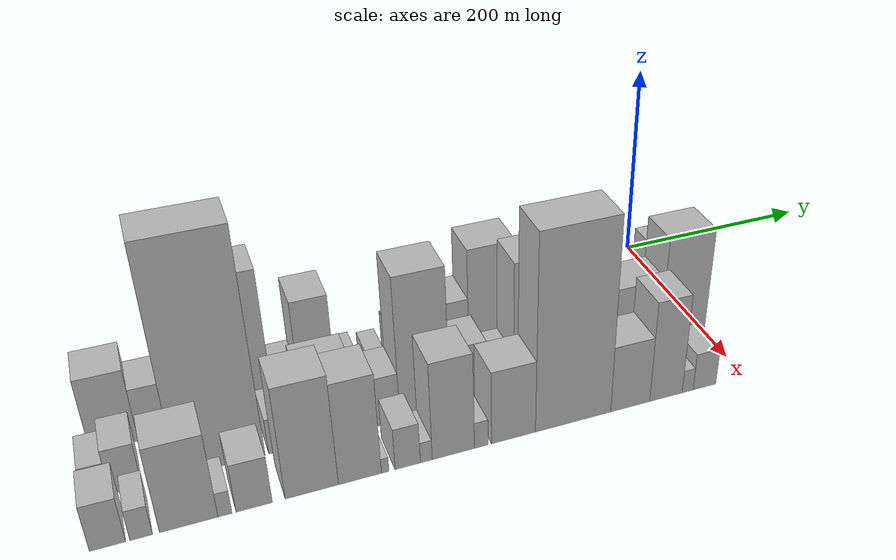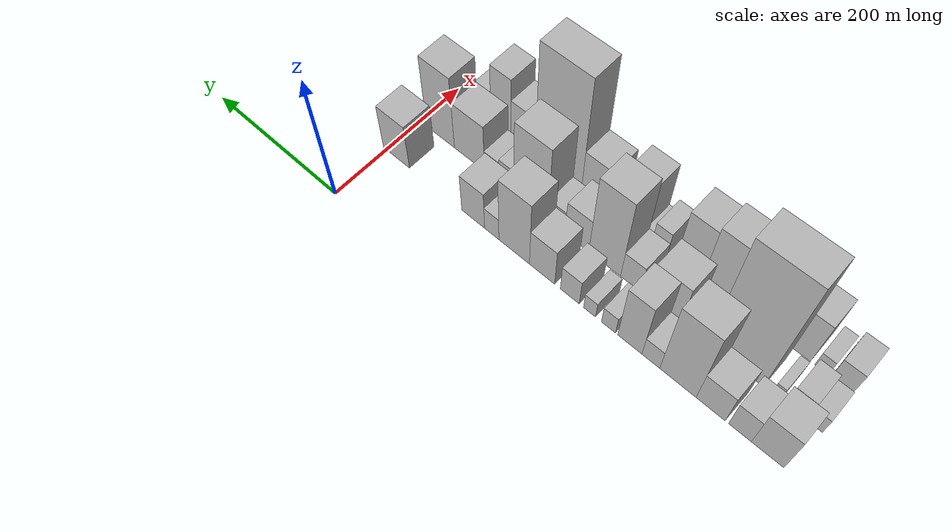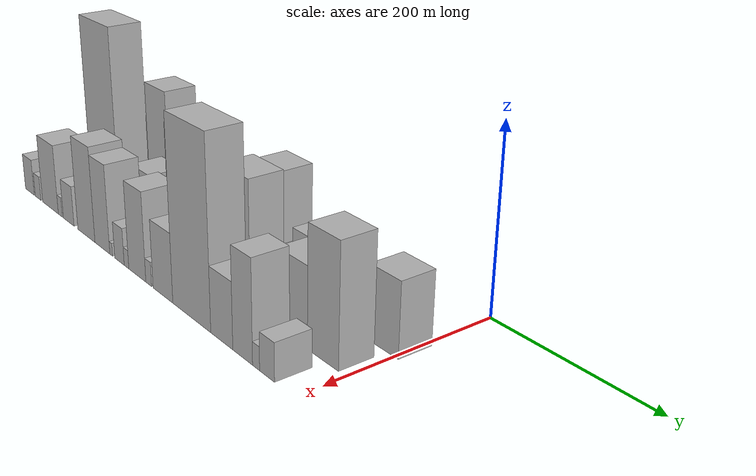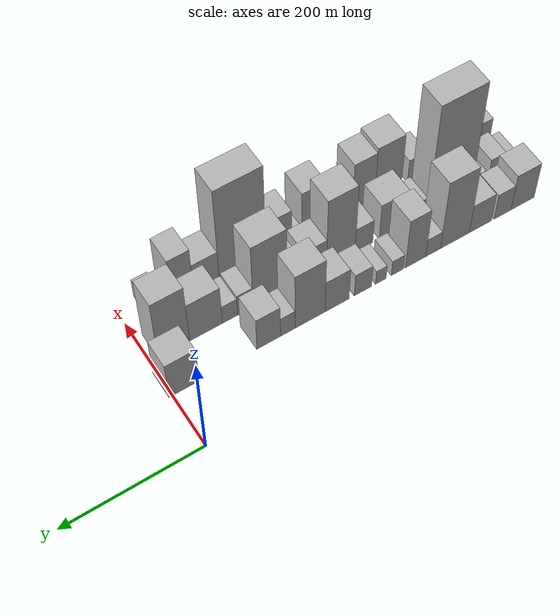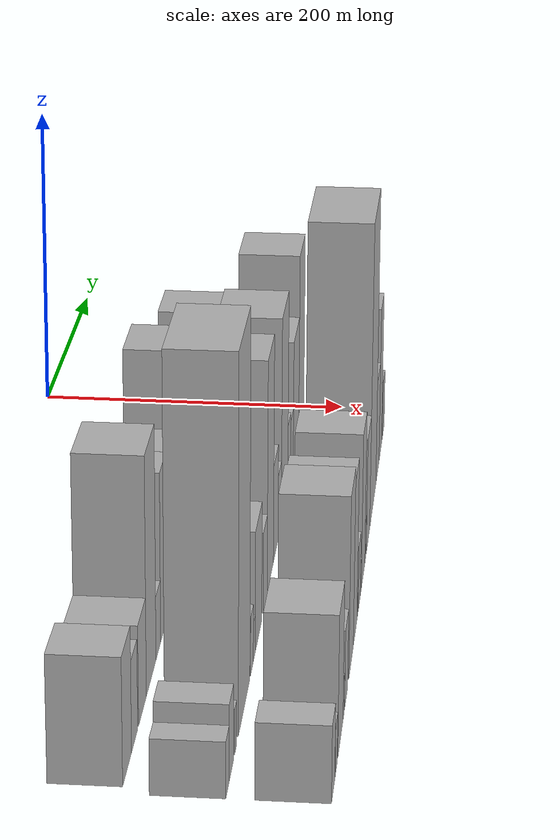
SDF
<sdf version="1.6">
 <world name="default">
  <model name="building_1">
   <static>1</static>
   <pose>100.0000 -532.8560 0 0.000000 0.000000 0.000000</pose>
   <link name="link">
    <pose>0 0 37.50 0 0 0</pose>
    <collision name="collision"><geometry><box><size>40.0000 38.2881 75.0000</size></box></geometry></collision>
    <visual name="visual">
     <cast_shadows>0</cast_shadows>
     <geometry><box><size>40.0000 38.2881 75.0000</size></box></geometry>
     <material>
      <script>
       <uri>model://HANNAS_wall/materials/scripts</uri>
       <uri>model://HANNAS_wall/materials/textures</uri>
       <name>vrc/HANNAS_wall</name>
      </script>
     </material>
    </visual>
   </link>
  </model>
  <model name="building_2">
   <static>1</static>
   <pose>100.0000 -499.9469 0 0.000000 0.000000 0.000000</pose>
   <link name="link">
    <pose>0 0 27.00 0 0 0</pose>
    <collision name="collision"><geometry><box><size>40.0000 27.5301 54.0000</size></box></geometry></collision>
    <visual name="visual">
     <cast_shadows>0</cast_shadows>
     <geometry><box><size>40.0000 27.5301 54.0000</size></box></geometry>
     <material>
      <script>
       <uri>model://HANNAS_wall/materials/scripts</uri>
       <uri>model://HANNAS_wall/materials/textures</uri>
       <name>vrc/HANNAS_wall</name>
      </script>
     </material>
    </visual>
   </link>
  </model>
  <model name="building_3">
   <static>1</static>
   <pose>100.0000 -464.2220 0 0.000000 0.000000 0.000000</pose>
   <link name="link">
    <pose>0 0 30.00 0 0 0</pose>
    <collision name="collision"><geometry><box><size>40.0000 35.9197 60.0000</size></box></geometry></collision>
    <visual name="visual">
     <cast_shadows>0</cast_shadows>
     <geometry><box><size>40.0000 35.9197 60.0000</size></box></geometry>
     <material>
      <script>
       <uri>model://HANNAS_wall/materials/scripts</uri>
       <uri>model://HANNAS_wall/materials/textures</uri>
       <name>vrc/HANNAS_wall</name>
      </script>
     </material>
    </visual>
   </link>
  </model>
  <model name="building_4">
   <static>1</static>
   <pose>100.0000 -423.1374 0 0.000000 0.000000 0.000000</pose>
   <link name="link">
    <pose>0 0 72.00 0 0 0</pose>
    <collision name="collision"><geometry><box><size>40.0000 46.2496 144.0000</size></box></geometry></collision>
    <visual name="visual">
     <cast_shadows>0</cast_shadows>
     <geometry><box><size>40.0000 46.2496 144.0000</size></box></geometry>
     <material>
      <script>
       <uri>model://HANNAS_wall/materials/scripts</uri>
       <uri>model://HANNAS_wall/materials/textures</uri>
       <name>vrc/HANNAS_wall</name>
      </script>
     </material>
    </visual>
   </link>
  </model>
  <model name="building_5">
   <static>1</static>
   <pose>100.0000 -388.4273 0 0.000000 0.000000 0.000000</pose>
   <link name="link">
    <pose>0 0 19.50 0 0 0</pose>
    <collision name="collision"><geometry><box><size>40.0000 23.1706 39.0000</size></box></geometry></collision>
    <visual name="visual">
     <cast_shadows>0</cast_shadows>
     <geometry><box><size>40.0000 23.1706 39.0000</size></box></geometry>
     <material>
      <script>
       <uri>model://HANNAS_wall/materials/scripts</uri>
       <uri>model://HANNAS_wall/materials/textures</uri>
       <name>vrc/HANNAS_wall</name>
      </script>
     </material>
    </visual>
   </link>
  </model>
  <model name="building_6">
   <static>1</static>
   <pose>100.0000 -360.8542 0 0.000000 0.000000 0.000000</pose>
   <link name="link">
    <pose>0 0 52.50 0 0 0</pose>
    <collision name="collision"><geometry><box><size>40.0000 31.9754 105.0000</size></box></geometry></collision>
    <visual name="visual">
     <cast_shadows>0</cast_shadows>
     <geometry><box><size>40.0000 31.9754 105.0000</size></box></geometry>
     <material>
      <script>
       <uri>model://HANNAS_wall/materials/scripts</uri>
       <uri>model://HANNAS_wall/materials/textures</uri>
       <name>vrc/HANNAS_wall</name>
      </script>
     </material>
    </visual>
   </link>
  </model>
  <model name="building_7">
   <static>1</static>
   <pose>100.0000 -332.4033 0 0.000000 0.000000 0.000000</pose>
   <link name="link">
    <pose>0 0 16.50 0 0 0</pose>
    <collision name="collision"><geometry><box><size>40.0000 18.9265 33.0000</size></box></geometry></collision>
    <visual name="visual">
     <cast_shadows>0</cast_shadows>
     <geometry><box><size>40.0000 18.9265 33.0000</size></box></geometry>
     <material>
      <script>
       <uri>model://HANNAS_wall/materials/scripts</uri>
       <uri>model://HANNAS_wall/materials/textures</uri>
       <name>vrc/HANNAS_wall</name>
      </script>
     </material>
    </visual>
   </link>
  </model>
  <model name="building_8">
   <static>1</static>
   <pose>100.0000 -306.7146 0 0.000000 0.000000 0.000000</pose>
   <link name="link">
    <pose>0 0 15.00 0 0 0</pose>
    <collision name="collision"><geometry><box><size>40.0000 16.4509 30.0000</size></box></geometry></collision>
    <visual name="visual">
     <cast_shadows>0</cast_shadows>
     <geometry><box><size>40.0000 16.4509 30.0000</size></box></geometry>
     <material>
      <script>
       <uri>model://HANNAS_wall/materials/scripts</uri>
       <uri>model://HANNAS_wall/materials/textures</uri>
       <name>vrc/HANNAS_wall</name>
      </script>
     </material>
    </visual>
   </link>
  </model>
  <model name="building_9">
   <static>1</static>
   <pose>100.0000 -279.2729 0 0.000000 0.000000 0.000000</pose>
   <link name="link">
    <pose>0 0 24.00 0 0 0</pose>
    <collision name="collision"><geometry><box><size>40.0000 26.4324 48.0000</size></box></geometry></collision>
    <visual name="visual">
     <cast_shadows>0</cast_shadows>
     <geometry><box><size>40.0000 26.4324 48.0000</size></box></geometry>
     <material>
      <script>
       <uri>model://HANNAS_wall/materials/scripts</uri>
       <uri>model://HANNAS_wall/materials/textures</uri>
       <name>vrc/HANNAS_wall</name>
      </script>
     </material>
    </visual>
   </link>
  </model>
  <model name="building_10">
   <static>1</static>
   <pose>100.0000 -239.9358 0 0.000000 0.000000 0.000000</pose>
   <link name="link">
    <pose>0 0 34.50 0 0 0</pose>
    <collision name="collision"><geometry><box><size>40.0000 36.2418 69.0000</size></box></geometry></collision>
    <visual name="visual">
     <cast_shadows>0</cast_shadows>
     <geometry><box><size>40.0000 36.2418 69.0000</size></box></geometry>
     <material>
      <script>
       <uri>model://HANNAS_wall/materials/scripts</uri>
       <uri>model://HANNAS_wall/materials/textures</uri>
       <name>vrc/HANNAS_wall</name>
      </script>
     </material>
    </visual>
   </link>
  </model>
  <model name="building_11">
   <static>1</static>
   <pose>100.0000 -199.3979 0 0.000000 0.000000 0.000000</pose>
   <link name="link">
    <pose>0 0 60.00 0 0 0</pose>
    <collision name="collision"><geometry><box><size>40.0000 44.8339 120.0000</size></box></geometry></collision>
    <visual name="visual">
     <cast_shadows>0</cast_shadows>
     <geometry><box><size>40.0000 44.8339 120.0000</size></box></geometry>
     <material>
      <script>
       <uri>model://HANNAS_wall/materials/scripts</uri>
       <uri>model://HANNAS_wall/materials/textures</uri>
       <name>vrc/HANNAS_wall</name>
      </script>
     </material>
    </visual>
   </link>
  </model>
  <model name="building_12">
   <static>1</static>
   <pose>100.0000 -166.2604 0 0.000000 0.000000 0.000000</pose>
   <link name="link">
    <pose>0 0 21.00 0 0 0</pose>
    <collision name="collision"><geometry><box><size>40.0000 21.4410 42.0000</size></box></geometry></collision>
    <visual name="visual">
     <cast_shadows>0</cast_shadows>
     <geometry><box><size>40.0000 21.4410 42.0000</size></box></geometry>
     <material>
      <script>
       <uri>model://HANNAS_wall/materials/scripts</uri>
       <uri>model://HANNAS_wall/materials/textures</uri>
       <name>vrc/HANNAS_wall</name>
      </script>
     </material>
    </visual>
   </link>
  </model>
  <model name="building_13">
   <static>1</static>
   <pose>100.0000 -138.0904 0 0.000000 0.000000 0.000000</pose>
   <link name="link">
    <pose>0 0 34.50 0 0 0</pose>
    <collision name="collision"><geometry><box><size>40.0000 34.8990 69.0000</size></box></geometry></collision>
    <visual name="visual">
     <cast_shadows>0</cast_shadows>
     <geometry><box><size>40.0000 34.8990 69.0000</size></box></geometry>
     <material>
      <script>
       <uri>model://HANNAS_wall/materials/scripts</uri>
       <uri>model://HANNAS_wall/materials/textures</uri>
       <name>vrc/HANNAS_wall</name>
      </script>
     </material>
    </visual>
   </link>
  </model>
  <model name="building_14">
   <static>1</static>
   <pose>100.0000 -16.3859 0 0.000000 0.000000 0.000000</pose>
   <link name="link">
    <pose>0 0 39.00 0 0 0</pose>
    <collision name="collision"><geometry><box><size>40.0000 42.8367 78.0000</size></box></geometry></collision>
    <visual name="visual">
     <cast_shadows>0</cast_shadows>
     <geometry><box><size>40.0000 42.8367 78.0000</size></box></geometry>
     <material>
      <script>
       <uri>model://HANNAS_wall/materials/scripts</uri>
       <uri>model://HANNAS_wall/materials/textures</uri>
       <name>vrc/HANNAS_wall</name>
      </script>
     </material>
    </visual>
   </link>
  </model>
  <model name="building_31">
   <static>1</static>
   <pose>155.0000 -550.4617 0 0.000000 0.000000 0.000000</pose>
   <link name="link">
    <pose>0 0 16.50 0 0 0</pose>
    <collision name="collision"><geometry><box><size>40.0000 19.0766 33.0000</size></box></geometry></collision>
    <visual name="visual">
     <cast_shadows>0</cast_shadows>
     <geometry><box><size>40.0000 19.0766 33.0000</size></box></geometry>
     <material>
      <script>
       <uri>model://HANNAS_wall/materials/scripts</uri>
       <uri>model://HANNAS_wall/materials/textures</uri>
       <name>vrc/HANNAS_wall</name>
      </script>
     </material>
    </visual>
   </link>
  </model>
  <model name="building_32">
   <static>1</static>
   <pose>155.0000 -528.6336 0 0.000000 0.000000 0.000000</pose>
   <link name="link">
    <pose>0 0 22.50 0 0 0</pose>
    <collision name="collision"><geometry><box><size>40.0000 24.5795 45.0000</size></box></geometry></collision>
    <visual name="visual">
     <cast_shadows>0</cast_shadows>
     <geometry><box><size>40.0000 24.5795 45.0000</size></box></geometry>
     <material>
      <script>
       <uri>model://HANNAS_wall/materials/scripts</uri>
       <uri>model://HANNAS_wall/materials/textures</uri>
       <name>vrc/HANNAS_wall</name>
      </script>
     </material>
    </visual>
   </link>
  </model>
  <model name="building_33">
   <static>1</static>
   <pose>155.0000 -504.8861 0 0.000000 0.000000 0.000000</pose>
   <link name="link">
    <pose>0 0 13.50 0 0 0</pose>
    <collision name="collision"><geometry><box><size>40.0000 10.9157 27.0000</size></box></geometry></collision>
    <visual name="visual">
     <cast_shadows>0</cast_shadows>
     <geometry><box><size>40.0000 10.9157 27.0000</size></box></geometry>
     <material>
      <script>
       <uri>model://HANNAS_wall/materials/scripts</uri>
       <uri>model://HANNAS_wall/materials/textures</uri>
       <name>vrc/HANNAS_wall</name>
      </script>
     </material>
    </visual>
   </link>
  </model>
  <model name="building_34">
   <static>1</static>
   <pose>155.0000 -454.1175 0 0.000000 0.000000 0.000000</pose>
   <link name="link">
    <pose>0 0 111.00 0 0 0</pose>
    <collision name="collision"><geometry><box><size>40.0000 70.6215 222.0000</size></box></geometry></collision>
    <visual name="visual">
     <cast_shadows>0</cast_shadows>
     <geometry><box><size>40.0000 70.6215 222.0000</size></box></geometry>
     <material>
      <script>
       <uri>model://HANNAS_wall/materials/scripts</uri>
       <uri>model://HANNAS_wall/materials/textures</uri>
       <name>vrc/HANNAS_wall</name>
      </script>
     </material>
    </visual>
   </link>
  </model>
  <model name="building_35">
   <static>1</static>
   <pose>155.0000 -406.4657 0 0.000000 0.000000 0.000000</pose>
   <link name="link">
    <pose>0 0 18.00 0 0 0</pose>
    <collision name="collision"><geometry><box><size>40.0000 18.6821 36.0000</size></box></geometry></collision>
    <visual name="visual">
     <cast_shadows>0</cast_shadows>
     <geometry><box><size>40.0000 18.6821 36.0000</size></box></geometry>
     <material>
      <script>
       <uri>model://HANNAS_wall/materials/scripts</uri>
       <uri>model://HANNAS_wall/materials/textures</uri>
       <name>vrc/HANNAS_wall</name>
      </script>
     </material>
    </visual>
   </link>
  </model>
  <model name="building_36">
   <static>1</static>
   <pose>155.0000 -391.2369 0 0.000000 0.000000 0.000000</pose>
   <link name="link">
    <pose>0 0 12.00 0 0 0</pose>
    <collision name="collision"><geometry><box><size>40.0000 11.7754 24.0000</size></box></geometry></collision>
    <visual name="visual">
     <cast_shadows>0</cast_shadows>
     <geometry><box><size>40.0000 11.7754 24.0000</size></box></geometry>
     <material>
      <script>
       <uri>model://HANNAS_wall/materials/scripts</uri>
       <uri>model://HANNAS_wall/materials/textures</uri>
       <name>vrc/HANNAS_wall</name>
      </script>
     </material>
    </visual>
   </link>
  </model>
  <model name="building_37">
   <static>1</static>
   <pose>155.0000 -363.3396 0 0.000000 0.000000 0.000000</pose>
   <link name="link">
    <pose>0 0 37.50 0 0 0</pose>
    <collision name="collision"><geometry><box><size>40.0000 44.0192 75.0000</size></box></geometry></collision>
    <visual name="visual">
     <cast_shadows>0</cast_shadows>
     <geometry><box><size>40.0000 44.0192 75.0000</size></box></geometry>
     <material>
      <script>
       <uri>model://HANNAS_wall/materials/scripts</uri>
       <uri>model://HANNAS_wall/materials/textures</uri>
       <name>vrc/HANNAS_wall</name>
      </script>
     </material>
    </visual>
   </link>
  </model>
  <model name="building_38">
   <static>1</static>
   <pose>155.0000 -317.6181 0 0.000000 0.000000 0.000000</pose>
   <link name="link">
    <pose>0 0 25.50 0 0 0</pose>
    <collision name="collision"><geometry><box><size>40.0000 27.4237 51.0000</size></box></geometry></collision>
    <visual name="visual">
     <cast_shadows>0</cast_shadows>
     <geometry><box><size>40.0000 27.4237 51.0000</size></box></geometry>
     <material>
      <script>
       <uri>model://HANNAS_wall/materials/scripts</uri>
       <uri>model://HANNAS_wall/materials/textures</uri>
       <name>vrc/HANNAS_wall</name>
      </script>
     </material>
    </visual>
   </link>
  </model>
  <model name="building_39">
   <static>1</static>
   <pose>155.0000 -281.6502 0 0.000000 0.000000 0.000000</pose>
   <link name="link">
    <pose>0 0 73.50 0 0 0</pose>
    <collision name="collision"><geometry><box><size>40.0000 44.5122 147.0000</size></box></geometry></collision>
    <visual name="visual">
     <cast_shadows>0</cast_shadows>
     <geometry><box><size>40.0000 44.5122 147.0000</size></box></geometry>
     <material>
      <script>
       <uri>model://HANNAS_wall/materials/scripts</uri>
       <uri>model://HANNAS_wall/materials/textures</uri>
       <name>vrc/HANNAS_wall</name>
      </script>
     </material>
    </visual>
   </link>
  </model>
  <model name="building_40">
   <static>1</static>
   <pose>155.0000 -242.1635 0 0.000000 0.000000 0.000000</pose>
   <link name="link">
    <pose>0 0 31.50 0 0 0</pose>
    <collision name="collision"><geometry><box><size>40.0000 34.4611 63.0000</size></box></geometry></collision>
    <visual name="visual">
     <cast_shadows>0</cast_shadows>
     <geometry><box><size>40.0000 34.4611 63.0000</size></box></geometry>
     <material>
      <script>
       <uri>model://HANNAS_wall/materials/scripts</uri>
       <uri>model://HANNAS_wall/materials/textures</uri>
       <name>vrc/HANNAS_wall</name>
      </script>
     </material>
    </visual>
   </link>
  </model>
  <model name="building_41">
   <static>1</static>
   <pose>155.0000 -212.4533 0 0.000000 0.000000 0.000000</pose>
   <link name="link">
    <pose>0 0 21.00 0 0 0</pose>
    <collision name="collision"><geometry><box><size>40.0000 24.9593 42.0000</size></box></geometry></collision>
    <visual name="visual">
     <cast_shadows>0</cast_shadows>
     <geometry><box><size>40.0000 24.9593 42.0000</size></box></geometry>
     <material>
      <script>
       <uri>model://HANNAS_wall/materials/scripts</uri>
       <uri>model://HANNAS_wall/materials/textures</uri>
       <name>vrc/HANNAS_wall</name>
      </script>
     </material>
    </visual>
   </link>
  </model>
  <model name="building_42">
   <static>1</static>
   <pose>155.0000 -174.4409 0 0.000000 0.000000 0.000000</pose>
   <link name="link">
    <pose>0 0 67.50 0 0 0</pose>
    <collision name="collision"><geometry><box><size>40.0000 51.0656 135.0000</size></box></geometry></collision>
    <visual name="visual">
     <cast_shadows>0</cast_shadows>
     <geometry><box><size>40.0000 51.0656 135.0000</size></box></geometry>
     <material>
      <script>
       <uri>model://HANNAS_wall/materials/scripts</uri>
       <uri>model://HANNAS_wall/materials/textures</uri>
       <name>vrc/HANNAS_wall</name>
      </script>
     </material>
    </visual>
   </link>
  </model>
  <model name="building_43">
   <static>1</static>
   <pose>155.0000 -137.5080 0 0.000000 0.000000 0.000000</pose>
   <link name="link">
    <pose>0 0 22.50 0 0 0</pose>
    <collision name="collision"><geometry><box><size>40.0000 22.8001 45.0000</size></box></geometry></collision>
    <visual name="visual">
     <cast_shadows>0</cast_shadows>
     <geometry><box><size>40.0000 22.8001 45.0000</size></box></geometry>
     <material>
      <script>
       <uri>model://HANNAS_wall/materials/scripts</uri>
       <uri>model://HANNAS_wall/materials/textures</uri>
       <name>vrc/HANNAS_wall</name>
      </script>
     </material>
    </visual>
   </link>
  </model>
  <model name="building_44">
   <static>1</static>
   <pose>155.0000 -114.9697 0 0.000000 0.000000 0.000000</pose>
   <link name="link">
    <pose>0 0 19.50 0 0 0</pose>
    <collision name="collision"><geometry><box><size>40.0000 22.2766 39.0000</size></box></geometry></collision>
    <visual name="visual">
     <cast_shadows>0</cast_shadows>
     <geometry><box><size>40.0000 22.2766 39.0000</size></box></geometry>
     <material>
      <script>
       <uri>model://HANNAS_wall/materials/scripts</uri>
       <uri>model://HANNAS_wall/materials/textures</uri>
       <name>vrc/HANNAS_wall</name>
      </script>
     </material>
    </visual>
   </link>
  </model>
  <model name="building_45">
   <static>1</static>
   <pose>155.0000 -80.0191 0 0.000000 0.000000 0.000000</pose>
   <link name="link">
    <pose>0 0 42.00 0 0 0</pose>
    <collision name="collision"><geometry><box><size>40.0000 47.6246 84.0000</size></box></geometry></collision>
    <visual name="visual">
     <cast_shadows>0</cast_shadows>
     <geometry><box><size>40.0000 47.6246 84.0000</size></box></geometry>
     <material>
      <script>
       <uri>model://HANNAS_wall/materials/scripts</uri>
       <uri>model://HANNAS_wall/materials/textures</uri>
       <name>vrc/HANNAS_wall</name>
      </script>
     </material>
    </visual>
   </link>
  </model>
  <model name="building_46">
   <static>1</static>
   <pose>155.0000 -33.4215 0 0.000000 0.000000 0.000000</pose>
   <link name="link">
    <pose>0 0 63.00 0 0 0</pose>
    <collision name="collision"><geometry><box><size>40.0000 45.5707 126.0000</size></box></geometry></collision>
    <visual name="visual">
     <cast_shadows>0</cast_shadows>
     <geometry><box><size>40.0000 45.5707 126.0000</size></box></geometry>
     <material>
      <script>
       <uri>model://HANNAS_wall/materials/scripts</uri>
       <uri>model://HANNAS_wall/materials/textures</uri>
       <name>vrc/HANNAS_wall</name>
      </script>
     </material>
    </visual>
   </link>
  </model>
  <model name="building_61">
   <static>1</static>
   <pose>210.0000 -547.0142 0 0.000000 0.000000 0.000000</pose>
   <link name="link">
    <pose>0 0 22.50 0 0 0</pose>
    <collision name="collision"><geometry><box><size>40.0000 25.9717 45.0000</size></box></geometry></collision>
    <visual name="visual">
     <cast_shadows>0</cast_shadows>
     <geometry><box><size>40.0000 25.9717 45.0000</size></box></geometry>
     <material>
      <script>
       <uri>model://HANNAS_wall/materials/scripts</uri>
       <uri>model://HANNAS_wall/materials/textures</uri>
       <name>vrc/HANNAS_wall</name>
      </script>
     </material>
    </visual>
   </link>
  </model>
  <model name="building_62">
   <static>1</static>
   <pose>210.0000 -522.7687 0 0.000000 0.000000 0.000000</pose>
   <link name="link">
    <pose>0 0 15.00 0 0 0</pose>
    <collision name="collision"><geometry><box><size>40.0000 16.5192 30.0000</size></box></geometry></collision>
    <visual name="visual">
     <cast_shadows>0</cast_shadows>
     <geometry><box><size>40.0000 16.5192 30.0000</size></box></geometry>
     <material>
      <script>
       <uri>model://HANNAS_wall/materials/scripts</uri>
       <uri>model://HANNAS_wall/materials/textures</uri>
       <name>vrc/HANNAS_wall</name>
      </script>
     </material>
    </visual>
   </link>
  </model>
  <model name="building_63">
   <static>1</static>
   <pose>210.0000 -487.6101 0 0.000000 0.000000 0.000000</pose>
   <link name="link">
    <pose>0 0 42.00 0 0 0</pose>
    <collision name="collision"><geometry><box><size>40.0000 43.7981 84.0000</size></box></geometry></collision>
    <visual name="visual">
     <cast_shadows>0</cast_shadows>
     <geometry><box><size>40.0000 43.7981 84.0000</size></box></geometry>
     <material>
      <script>
       <uri>model://HANNAS_wall/materials/scripts</uri>
       <uri>model://HANNAS_wall/materials/textures</uri>
       <name>vrc/HANNAS_wall</name>
      </script>
     </material>
    </visual>
   </link>
  </model>
  <model name="building_64">
   <static>1</static>
   <pose>210.0000 -460.3641 0 0.000000 0.000000 0.000000</pose>
   <link name="link">
    <pose>0 0 12.00 0 0 0</pose>
    <collision name="collision"><geometry><box><size>40.0000 10.6939 24.0000</size></box></geometry></collision>
    <visual name="visual">
     <cast_shadows>0</cast_shadows>
     <geometry><box><size>40.0000 10.6939 24.0000</size></box></geometry>
     <material>
      <script>
       <uri>model://HANNAS_wall/materials/scripts</uri>
       <uri>model://HANNAS_wall/materials/textures</uri>
       <name>vrc/HANNAS_wall</name>
      </script>
     </material>
    </visual>
   </link>
  </model>
  <model name="building_65">
   <static>1</static>
   <pose>210.0000 -437.9456 0 0.000000 0.000000 0.000000</pose>
   <link name="link">
    <pose>0 0 24.00 0 0 0</pose>
    <collision name="collision"><geometry><box><size>40.0000 28.1432 48.0000</size></box></geometry></collision>
    <visual name="visual">
     <cast_shadows>0</cast_shadows>
     <geometry><box><size>40.0000 28.1432 48.0000</size></box></geometry>
     <material>
      <script>
       <uri>model://HANNAS_wall/materials/scripts</uri>
       <uri>model://HANNAS_wall/materials/textures</uri>
       <name>vrc/HANNAS_wall</name>
      </script>
     </material>
    </visual>
   </link>
  </model>
  <model name="building_66">
   <static>1</static>
   <pose>210.0000 -392.5813 0 0.000000 0.000000 0.000000</pose>
   <link name="link">
    <pose>0 0 55.50 0 0 0</pose>
    <collision name="collision"><geometry><box><size>40.0000 42.5854 111.0000</size></box></geometry></collision>
    <visual name="visual">
     <cast_shadows>0</cast_shadows>
     <geometry><box><size>40.0000 42.5854 111.0000</size></box></geometry>
     <material>
      <script>
       <uri>model://HANNAS_wall/materials/scripts</uri>
       <uri>model://HANNAS_wall/materials/textures</uri>
       <name>vrc/HANNAS_wall</name>
      </script>
     </material>
    </visual>
   </link>
  </model>
  <model name="building_67">
   <static>1</static>
   <pose>210.0000 -353.6495 0 0.000000 0.000000 0.000000</pose>
   <link name="link">
    <pose>0 0 51.00 0 0 0</pose>
    <collision name="collision"><geometry><box><size>40.0000 35.2782 102.0000</size></box></geometry></collision>
    <visual name="visual">
     <cast_shadows>0</cast_shadows>
     <geometry><box><size>40.0000 35.2782 102.0000</size></box></geometry>
     <material>
      <script>
       <uri>model://HANNAS_wall/materials/scripts</uri>
       <uri>model://HANNAS_wall/materials/textures</uri>
       <name>vrc/HANNAS_wall</name>
      </script>
     </material>
    </visual>
   </link>
  </model>
  <model name="building_68">
   <static>1</static>
   <pose>210.0000 -332.8525 0 0.000000 0.000000 0.000000</pose>
   <link name="link">
    <pose>0 0 7.50 0 0 0</pose>
    <collision name="collision"><geometry><box><size>40.0000 6.3157 15.0000</size></box></geometry></collision>
    <visual name="visual">
     <cast_shadows>0</cast_shadows>
     <geometry><box><size>40.0000 6.3157 15.0000</size></box></geometry>
     <material>
      <script>
       <uri>model://HANNAS_wall/materials/scripts</uri>
       <uri>model://HANNAS_wall/materials/textures</uri>
       <name>vrc/HANNAS_wall</name>
      </script>
     </material>
    </visual>
   </link>
  </model>
  <model name="building_69">
   <static>1</static>
   <pose>210.0000 -314.0196 0 0.000000 0.000000 0.000000</pose>
   <link name="link">
    <pose>0 0 21.00 0 0 0</pose>
    <collision name="collision"><geometry><box><size>40.0000 21.3500 42.0000</size></box></geometry></collision>
    <visual name="visual">
     <cast_shadows>0</cast_shadows>
     <geometry><box><size>40.0000 21.3500 42.0000</size></box></geometry>
     <material>
      <script>
       <uri>model://HANNAS_wall/materials/scripts</uri>
       <uri>model://HANNAS_wall/materials/textures</uri>
       <name>vrc/HANNAS_wall</name>
      </script>
     </material>
    </visual>
   </link>
  </model>
  <model name="building_70">
   <static>1</static>
   <pose>210.0000 -298.2608 0 0.000000 0.000000 0.000000</pose>
   <link name="link">
    <pose>0 0 10.50 0 0 0</pose>
    <collision name="collision"><geometry><box><size>40.0000 10.1677 21.0000</size></box></geometry></collision>
    <visual name="visual">
     <cast_shadows>0</cast_shadows>
     <geometry><box><size>40.0000 10.1677 21.0000</size></box></geometry>
     <material>
      <script>
       <uri>model://HANNAS_wall/materials/scripts</uri>
       <uri>model://HANNAS_wall/materials/textures</uri>
       <name>vrc/HANNAS_wall</name>
      </script>
     </material>
    </visual>
   </link>
  </model>
  <model name="building_71">
   <static>1</static>
   <pose>210.0000 -274.8726 0 0.000000 0.000000 0.000000</pose>
   <link name="link">
    <pose>0 0 49.50 0 0 0</pose>
    <collision name="collision"><geometry><box><size>40.0000 36.6087 99.0000</size></box></geometry></collision>
    <visual name="visual">
     <cast_shadows>0</cast_shadows>
     <geometry><box><size>40.0000 36.6087 99.0000</size></box></geometry>
     <material>
      <script>
       <uri>model://HANNAS_wall/materials/scripts</uri>
       <uri>model://HANNAS_wall/materials/textures</uri>
       <name>vrc/HANNAS_wall</name>
      </script>
     </material>
    </visual>
   </link>
  </model>
  <model name="building_72">
   <static>1</static>
   <pose>210.0000 -250.5968 0 0.000000 0.000000 0.000000</pose>
   <link name="link">
    <pose>0 0 13.50 0 0 0</pose>
    <collision name="collision"><geometry><box><size>40.0000 11.9430 27.0000</size></box></geometry></collision>
    <visual name="visual">
     <cast_shadows>0</cast_shadows>
     <geometry><box><size>40.0000 11.9430 27.0000</size></box></geometry>
     <material>
      <script>
       <uri>model://HANNAS_wall/materials/scripts</uri>
       <uri>model://HANNAS_wall/materials/textures</uri>
       <name>vrc/HANNAS_wall</name>
      </script>
     </material>
    </visual>
   </link>
  </model>
  <model name="building_73">
   <static>1</static>
   <pose>210.0000 -221.9281 0 0.000000 0.000000 0.000000</pose>
   <link name="link">
    <pose>0 0 37.50 0 0 0</pose>
    <collision name="collision"><geometry><box><size>40.0000 39.3942 75.0000</size></box></geometry></collision>
    <visual name="visual">
     <cast_shadows>0</cast_shadows>
     <geometry><box><size>40.0000 39.3942 75.0000</size></box></geometry>
     <material>
      <script>
       <uri>model://HANNAS_wall/materials/scripts</uri>
       <uri>model://HANNAS_wall/materials/textures</uri>
       <name>vrc/HANNAS_wall</name>
      </script>
     </material>
    </visual>
   </link>
  </model>
  <model name="building_74">
   <static>1</static>
   <pose>210.0000 -167.2171 0 0.000000 0.000000 0.000000</pose>
   <link name="link">
    <pose>0 0 99.00 0 0 0</pose>
    <collision name="collision"><geometry><box><size>40.0000 70.0277 198.0000</size></box></geometry></collision>
    <visual name="visual">
     <cast_shadows>0</cast_shadows>
     <geometry><box><size>40.0000 70.0277 198.0000</size></box></geometry>
     <material>
      <script>
       <uri>model://HANNAS_wall/materials/scripts</uri>
       <uri>model://HANNAS_wall/materials/textures</uri>
       <name>vrc/HANNAS_wall</name>
      </script>
     </material>
    </visual>
   </link>
  </model>
  <model name="building_75">
   <static>1</static>
   <pose>210.0000 -113.4091 0 0.000000 0.000000 0.000000</pose>
   <link name="link">
    <pose>0 0 34.50 0 0 0</pose>
    <collision name="collision"><geometry><box><size>40.0000 37.5884 69.0000</size></box></geometry></collision>
    <visual name="visual">
     <cast_shadows>0</cast_shadows>
     <geometry><box><size>40.0000 37.5884 69.0000</size></box></geometry>
     <material>
      <script>
       <uri>model://HANNAS_wall/materials/scripts</uri>
       <uri>model://HANNAS_wall/materials/textures</uri>
       <name>vrc/HANNAS_wall</name>
      </script>
     </material>
    </visual>
   </link>
  </model>
  <model name="building_76">
   <static>1</static>
   <pose>210.0000 -78.6731 0 0.000000 0.000000 0.000000</pose>
   <link name="link">
    <pose>0 0 52.50 0 0 0</pose>
    <collision name="collision"><geometry><box><size>40.0000 31.8837 105.0000</size></box></geometry></collision>
    <visual name="visual">
     <cast_shadows>0</cast_shadows>
     <geometry><box><size>40.0000 31.8837 105.0000</size></box></geometry>
     <material>
      <script>
       <uri>model://HANNAS_wall/materials/scripts</uri>
       <uri>model://HANNAS_wall/materials/textures</uri>
       <name>vrc/HANNAS_wall</name>
      </script>
     </material>
    </visual>
   </link>
  </model>
  <model name="building_77">
   <static>1</static>
   <pose>210.0000 -57.2189 0 0.000000 0.000000 0.000000</pose>
   <link name="link">
    <pose>0 0 12.00 0 0 0</pose>
    <collision name="collision"><geometry><box><size>40.0000 11.0247 24.0000</size></box></geometry></collision>
    <visual name="visual">
     <cast_shadows>0</cast_shadows>
     <geometry><box><size>40.0000 11.0247 24.0000</size></box></geometry>
     <material>
      <script>
       <uri>model://HANNAS_wall/materials/scripts</uri>
       <uri>model://HANNAS_wall/materials/textures</uri>
       <name>vrc/HANNAS_wall</name>
      </script>
     </material>
    </visual>
   </link>
  </model>
  <model name="building_78">
   <static>1</static>
   <pose>210.0000 -40.3338 0 0.000000 0.000000 0.000000</pose>
   <link name="link">
    <pose>0 0 19.50 0 0 0</pose>
    <collision name="collision"><geometry><box><size>40.0000 22.7454 39.0000</size></box></geometry></collision>
    <visual name="visual">
     <cast_shadows>0</cast_shadows>
     <geometry><box><size>40.0000 22.7454 39.0000</size></box></geometry>
     <material>
      <script>
       <uri>model://HANNAS_wall/materials/scripts</uri>
       <uri>model://HANNAS_wall/materials/textures</uri>
       <name>vrc/HANNAS_wall</name>
      </script>
     </material>
    </visual>
   </link>
  </model>
 </world>
</sdf>
